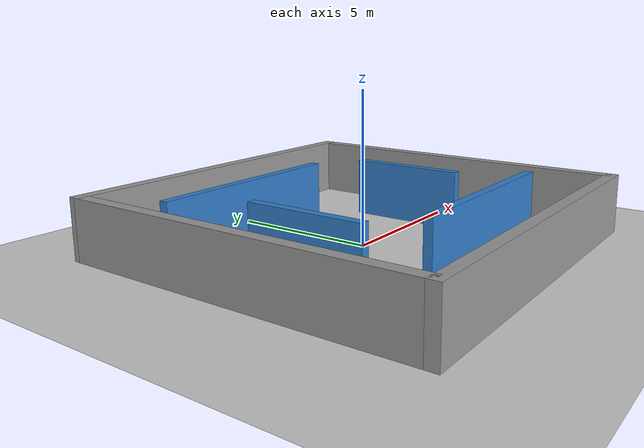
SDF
<?xml version="1.0" ?>
<sdf version="1.6">
  <world name="maze_world">
    <!-- Ignition / Modern Gazebo World Plugins -->
    <plugin filename="ignition-gazebo-physics-system" name="ignition::gazebo::systems::Physics"/>
    <plugin filename="ignition-gazebo-user-commands-system" name="ignition::gazebo::systems::UserCommands"/>
    <plugin filename="ignition-gazebo-scene-broadcaster-system" name="ignition::gazebo::systems::SceneBroadcaster"/>
    <plugin filename="ignition-gazebo-sensors-system" name="ignition::gazebo::systems::Sensors">
      <render_engine>ogre2</render_engine>
    </plugin>
    <plugin filename="ignition-gazebo-imu-system" name="ignition::gazebo::systems::Imu"/>

    <!-- Directional Sun Light -->
    <light type="directional" name="sun">
      <cast_shadows>true</cast_shadows>
      <pose>0 0 10 0 0 0</pose>
      <diffuse>0.8 0.8 0.8 1</diffuse>
      <specular>0.2 0.2 0.2 1</specular>
      <attenuation>
        <range>1000</range>
        <constant>0.9</constant>
        <linear>0.01</linear>
        <quadratic>0.001</quadratic>
      </attenuation>
      <direction>-0.5 0.1 -0.9</direction>
    </light>

    <!-- Ground Plane -->
    <model name="ground_plane">
      <static>true</static>
      <link name="link">
        <collision name="collision">
          <geometry>
            <plane>
              <normal>0 0 1</normal>
              <size>100 100</size>
            </plane>
          </geometry>
          <surface>
            <friction>
              <ode>
                <mu>100</mu>
                <mu2>50</mu2>
              </ode>
            </friction>
          </surface>
        </collision>
        <visual name="visual">
          <cast_shadows>false</cast_shadows>
          <geometry>
            <plane>
              <normal>0 0 1</normal>
              <size>100 100</size>
            </plane>
          </geometry>
          <material>
            <ambient>0.8 0.8 0.8 1</ambient>
            <diffuse>0.8 0.8 0.8 1</diffuse>
            <specular>0.8 0.8 0.8 1</specular>
          </material>
        </visual>
      </link>
    </model>

    <!-- Outer Perimeter Boundary Walls (12m x 12m) -->
    <model name="wall_north">
      <static>true</static>
      <pose>0 6 1 0 0 0</pose>
      <link name="link">
        <collision name="col"><geometry><box><size>12.4 0.4 2.0</size></box></geometry></collision>
        <visual name="vis"><geometry><box><size>12.4 0.4 2.0</size></box></geometry><material><ambient>0.3 0.3 0.3 1</ambient><diffuse>0.6 0.6 0.6 1</diffuse></material></visual>
      </link>
    </model>
    <model name="wall_south">
      <static>true</static>
      <pose>0 -6 1 0 0 0</pose>
      <link name="link">
        <collision name="col"><geometry><box><size>12.4 0.4 2.0</size></box></geometry></collision>
        <visual name="vis"><geometry><box><size>12.4 0.4 2.0</size></box></geometry><material><ambient>0.3 0.3 0.3 1</ambient><diffuse>0.6 0.6 0.6 1</diffuse></material></visual>
      </link>
    </model>
    <model name="wall_east">
      <static>true</static>
      <pose>6 0 1 0 0 0</pose>
      <link name="link">
        <collision name="col"><geometry><box><size>0.4 12.0 2.0</size></box></geometry></collision>
        <visual name="vis"><geometry><box><size>0.4 12.0 2.0</size></box></geometry><material><ambient>0.3 0.3 0.3 1</ambient><diffuse>0.6 0.6 0.6 1</diffuse></material></visual>
      </link>
    </model>
    <model name="wall_west">
      <static>true</static>
      <pose>-6 0 1 0 0 0</pose>
      <link name="link">
        <collision name="col"><geometry><box><size>0.4 12.0 2.0</size></box></geometry></collision>
        <visual name="vis"><geometry><box><size>0.4 12.0 2.0</size></box></geometry><material><ambient>0.3 0.3 0.3 1</ambient><diffuse>0.6 0.6 0.6 1</diffuse></material></visual>
      </link>
    </model>

    <!-- Interior Solvable Labyrinth Partitions (Zero Obstacles at (0,0) Spawn) -->
    <!-- North Horizontal Wall (leaves east corridor open) -->
    <model name="maze_wall_north">
      <static>true</static>
      <pose>-1.5 3.5 1 0 0 0</pose>
      <link name="link">
        <collision name="col"><geometry><box><size>7.0 0.3 2.0</size></box></geometry></collision>
        <visual name="vis"><geometry><box><size>7.0 0.3 2.0</size></box></geometry><material><ambient>0.2 0.4 0.7 1</ambient><diffuse>0.2 0.5 0.8 1</diffuse></material></visual>
      </link>
    </model>

    <!-- South Horizontal Wall (leaves west corridor open) -->
    <model name="maze_wall_south">
      <static>true</static>
      <pose>1.5 -3.5 1 0 0 0</pose>
      <link name="link">
        <collision name="col"><geometry><box><size>7.0 0.3 2.0</size></box></geometry></collision>
        <visual name="vis"><geometry><box><size>7.0 0.3 2.0</size></box></geometry><material><ambient>0.2 0.4 0.7 1</ambient><diffuse>0.2 0.5 0.8 1</diffuse></material></visual>
      </link>
    </model>

    <!-- West Vertical Wall (leaves north & south bypass channels) -->
    <model name="maze_wall_west">
      <static>true</static>
      <pose>-3.5 -0.5 1 0 0 0</pose>
      <link name="link">
        <collision name="col"><geometry><box><size>0.3 4.0 2.0</size></box></geometry></collision>
        <visual name="vis"><geometry><box><size>0.3 4.0 2.0</size></box></geometry><material><ambient>0.2 0.4 0.7 1</ambient><diffuse>0.2 0.5 0.8 1</diffuse></material></visual>
      </link>
    </model>

    <!-- East Vertical Wall (leaves north & south bypass channels) -->
    <model name="maze_wall_east">
      <static>true</static>
      <pose>3.5 0.5 1 0 0 0</pose>
      <link name="link">
        <collision name="col"><geometry><box><size>0.3 4.0 2.0</size></box></geometry></collision>
        <visual name="vis"><geometry><box><size>0.3 4.0 2.0</size></box></geometry><material><ambient>0.2 0.4 0.7 1</ambient><diffuse>0.2 0.5 0.8 1</diffuse></material></visual>
      </link>
    </model>
  </world>
</sdf>
